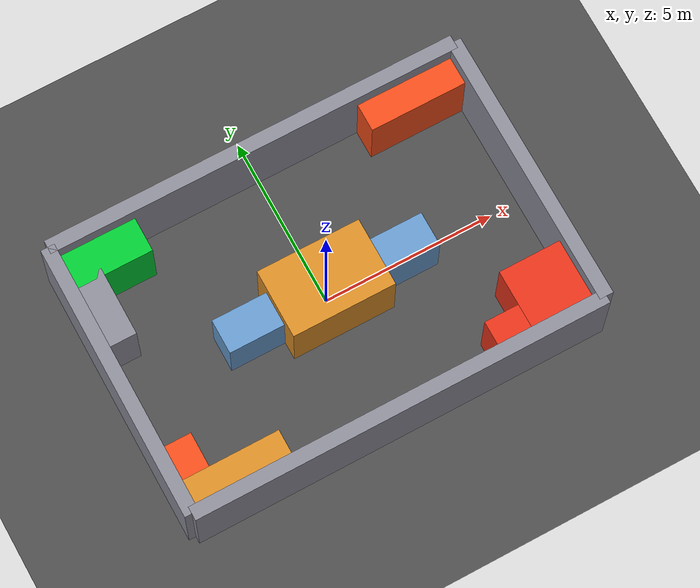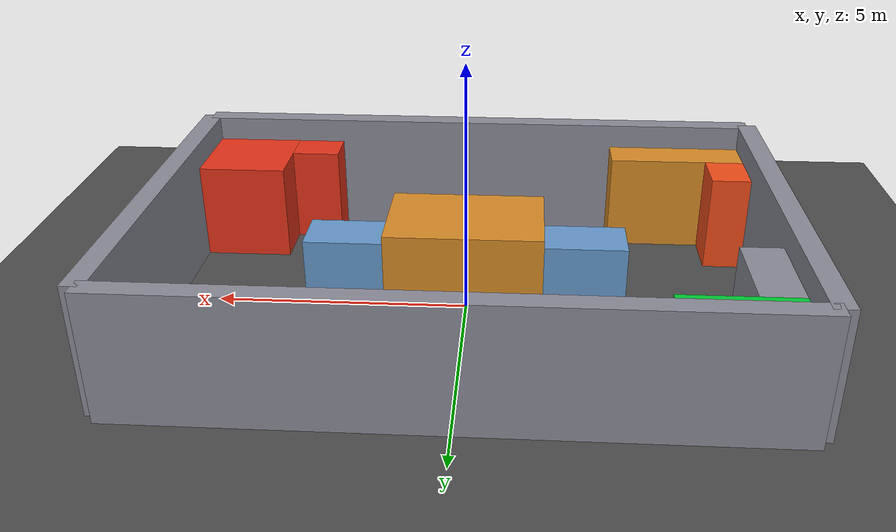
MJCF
<mujoco model="ranger_test_env">

  <compiler angle="radian"/>
  <option timestep="0.004" integrator="RK4" gravity="0 0 -9.81"/>

  <default>
    <joint damping="1.0" armature="0.01"/>
    <geom friction="1.2 0.01 0.001" condim="4" solimp="0.9 0.95 0.001" solref="0.02 1"/>
  </default>

  <!-- Include the base robot model -->
  <include file="C:\Users\sanmi\Desktop\projects\RL\simulation\ranger_mini_v3\ranger_mini_v3.xml"/>

  <asset>
    <!-- Start / Finish lines -->
    <material name="start_mat"  rgba="0.0 0.8 0.2 1"/>
    <material name="finish_mat" rgba="0.9 0.2 0.1 1"/>
    <material name="wall_mat"   rgba="0.55 0.55 0.60 1"/>
    <material name="box_mat"    rgba="0.85 0.55 0.15 1"/>
    <material name="cone_mat"   rgba="0.95 0.3  0.1  1"/>
    <material name="ramp_mat"   rgba="0.4  0.6  0.8  1"/>
  </asset>

  <worldbody>

    <!-- ── Lighting ────────────────────────────────────────────────────── -->
    <!-- Different lighting: Warm and cool lights in the scene -->
    <light name="warm_fill" pos="-4 -2 4" dir="1 0.5 -1" diffuse="0.8 0.5 0.3" castshadow="false"/>
    <light name="cool_fill" pos="4 2 4" dir="-1 -0.5 -1" diffuse="0.3 0.5 0.8" castshadow="false"/>
    <light name="green_fill" pos="0 3 4" dir="0 -1 -1" diffuse="0.2 0.6 0.3" castshadow="false"/>

    <!-- ── Perimeter walls (12x8 meters) ───────────────────────────────── -->
    <geom name="wall_n" type="box" size="6 0.2 1.25" pos="0  4 1.25" material="wall_mat" contype="1" conaffinity="1"/>
    <geom name="wall_s" type="box" size="6 0.2 1.25" pos="0 -4 1.25" material="wall_mat" contype="1" conaffinity="1"/>
    <geom name="wall_e" type="box" size="0.2 4 1.25" pos=" 6 0 1.25" material="wall_mat" contype="1" conaffinity="1"/>
    <geom name="wall_w" type="box" size="0.2 4 1.25" pos="-6 0 1.25" material="wall_mat" contype="1" conaffinity="1"/>

    <!-- ── Obstacles matching the map layout ───────────────────────────── -->
    <!-- Central block -->
    <geom name="obs_center" type="box" size="1.5 1.0 1.0" pos="0 0 1.0" material="box_mat"/>
    <geom name="obs_center_l" type="box" size="0.8 0.5 0.8" pos="-2.3 0 0.8" material="ramp_mat"/>
    <geom name="obs_center_r" type="box" size="0.8 0.5 0.8" pos="2.3 0 0.8" material="ramp_mat"/>

    <!-- Top-left structure -->
    <geom name="obs_tl1" type="box" size="1.2 0.6 1.0" pos="-4.8 3.4 1.0" material="start_mat"/>
    <geom name="obs_tl2" type="box" size="0.5 1.0 1.0" pos="-5.5 2.0 1.0" material="wall_mat"/>

    <!-- Bottom-right structure -->
    <geom name="obs_br1" type="box" size="1.0 1.0 1.0" pos="5.0 -3.0 1.0" material="finish_mat"/>
    <geom name="obs_br2" type="box" size="0.5 0.5 1.0" pos="3.5 -3.5 1.0" material="finish_mat"/>

    <!-- Top-right structure -->
    <geom name="obs_tr1" type="box" size="1.5 0.5 1.0" pos="4.5 3.5 1.0" material="cone_mat"/>

    <!-- Bottom-left structure -->
    <geom name="obs_bl1" type="box" size="1.5 0.5 1.0" pos="-4.5 -3.5 1.0" material="box_mat"/>
    <geom name="obs_bl2" type="box" size="0.5 0.5 1.0" pos="-5.5 -2.5 1.0" material="cone_mat"/>

  </worldbody>
</mujoco>

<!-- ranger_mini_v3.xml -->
<mujoco model="ranger_mini_v3">

  <compiler angle="radian"/>

  <!-- Physics: small timestep for wheel-ground stability -->
  <option timestep="0.004" integrator="RK4" gravity="0 0 -9.81"/>

  <default>
    <joint damping="1.0" armature="0.01"/>
    <!-- Good tire-like friction with proper contact parameters -->
    <geom friction="1.2 0.005 0.0001" condim="4" solimp="0.95 0.99 0.001" solref="0.01 1"/>
  </default>

  <asset>
    <texture name="floor_tex" type="2d" builtin="checker"
             rgb1="0.25 0.25 0.25" rgb2="0.35 0.35 0.35" width="512" height="512"/>
    <material name="floor_mat"    texture="floor_tex" texrepeat="10 10"/>

    <material name="chassis_mat"  rgba="0.79 0.82 0.93 1"/>
    <material name="wheel_mat"    rgba="0.12 0.12 0.12 1"/>
    <material name="steering_mat" rgba="0.30 0.30 0.35 1"/>
    <material name="cam_mat"      rgba="0.9 0.2 0.1 1"/>
  </asset>

  <worldbody>
    <!-- Ground plane -->
    <geom name="floor" type="plane" size="30 30 0.1"
          material="floor_mat" friction="1.2 0.005 0.0001" contype="1" conaffinity="3"/>

    <!-- Lighting -->
    <light name="sun" pos="0 0 8" dir="0 0 -1" diffuse="0.85 0.85 0.85" specular="0.2 0.2 0.2" castshadow="true"/>
    <light name="fill" pos="-3 3 4" dir="0.4 -0.5 -0.8" diffuse="0.3 0.3 0.3" specular="0.0 0.0 0.0" castshadow="false"/>

    <!-- ======================= RANGER MINI V3 ======================= -->
    <body name="base_link" pos="0 0 0.2775">

      <!-- 6-DOF free joint so the robot moves in the world -->
      <freejoint name="root"/>

      <!-- Chassis inertia (Spec: 75 kg, 720x500x345 mm box) -->
      <inertial pos="-0.02 -0.003 0.05" mass="43"
                diaginertia="1.3 1.3 1.3"/>

      <!-- Chassis collision box (Spec: 720x500x345 mm, half-sizes 0.36x0.25x0.1725) -->
      <geom name="chassis_box" type="box" size="0.36 0.25 0.1725"
            pos="0 0 0" material="chassis_mat" contype="1" conaffinity="1"/>

      <!-- IMU site (at base centre) -->
      <site name="imu_site" pos="0 0 0" size="0.01"/>

      <!-- ── Front RGB Camera ───────────────────────────────────────────── -->
      <body name="camera_link" pos="0.36 0 0.10">
        <geom name="cam_marker" type="box" size="0.015 0.02 0.015" material="cam_mat" contype="0" conaffinity="0"/>
        <camera name="front_cam" fovy="80" xyaxes="0 -1 0 0 0 1"/>
      </body>

      <!-- ── LiDAR mount (simulated as depth camera) ───────────────────── -->
      <body name="lidar_link" pos="0.36 0 0.20">
        <geom name="lidar_marker" type="cylinder" size="0.03 0.02" material="cam_mat" contype="0" conaffinity="0"/>
        <!-- Narrow vertical FOV to avoid seeing floor, wide aspect ratio for horizontal sweep -->
        <camera name="lidar_cam" fovy="15" xyaxes="0 -1 0 0 0 1"/>
      </body>

      <!-- ═══════════ FRONT-LEFT CORNER ═════════════════════════════════
           Steering mount: x=+0.2105  y=+0.300  z=-0.1125
      -->
      <body name="fl_suspension_link" pos="0.247 0.182 0.0">
        <inertial pos="0 0 0" mass="2" diaginertia="0.01 0.01 0.01"/>
        <joint name="fl_suspension_joint" type="slide" axis="0 0 1" stiffness="10500" damping="500"/>
        <body name="fl_steering_wheel_link" pos="0 0 -0.1775">
          <joint name="fl_steering_joint" type="hinge" axis="0 0 -1"
                 limited="false"
                 damping="5.0" armature="1.0"/>
          <inertial pos="0 0 -0.04" mass="1"
                    diaginertia="0.01 0.01 0.01"/>
          <geom name="fl_knuckle" type="cylinder" size="0.025 0.06"
                pos="0 0 -0.06" material="steering_mat"
                contype="0" conaffinity="0"/>

          <!-- Wheel: steering pivot passes through wheel center for 0 scrub radius -->
          <body name="fl_wheel_link" pos="0 0 0">
            <joint name="fl_wheel" type="hinge" axis="0 1 0"
                   limited="false" damping="0.5"/>
            <inertial pos="0 0 0" mass="5"
                      diaginertia="0.04 0.07 0.04"/>
            <!-- Spec: radius 0.165, half-width 0.05 -->
            <geom name="fl_wheel_col" type="cylinder" size="0.100 0.05"
                  euler="1.5708 0 0" material="wheel_mat"
                  contype="2" conaffinity="2"/>
          </body>
        </body>
      </body>

      <!-- ═══════════ FRONT-RIGHT CORNER ════════════════════════════════
           Steering mount: x=+0.2105  y=-0.300  z=-0.1125
      -->
      <body name="fr_suspension_link" pos="0.247 -0.182 0.0">
        <inertial pos="0 0 0" mass="2" diaginertia="0.01 0.01 0.01"/>
        <joint name="fr_suspension_joint" type="slide" axis="0 0 1" stiffness="10500" damping="500"/>
        <body name="fr_steering_wheel_link" pos="0 0 -0.1775">
          <joint name="fr_steering_joint" type="hinge" axis="0 0 -1"
                 limited="false"
                 damping="5.0" armature="1.0"/>
          <inertial pos="0 0 -0.04" mass="1"
                    diaginertia="0.01 0.01 0.01"/>
          <geom name="fr_knuckle" type="cylinder" size="0.025 0.06"
                pos="0 0 -0.06" material="steering_mat"
                contype="0" conaffinity="0"/>

          <body name="fr_wheel_link" pos="0 0 0">
            <joint name="fr_wheel" type="hinge" axis="0 1 0"
                   limited="false" damping="0.5"/>
            <inertial pos="0 0 0" mass="5"
                      diaginertia="0.04 0.07 0.04"/>
            <geom name="fr_wheel_col" type="cylinder" size="0.100 0.05"
                  euler="1.5708 0 0" material="wheel_mat"
                  contype="2" conaffinity="2"/>
          </body>
        </body>
      </body>

      <!-- ═══════════ REAR-LEFT CORNER ══════════════════════════════════
           Steering mount: x=-0.2105  y=+0.300  z=-0.1125
      -->
      <body name="rl_suspension_link" pos="-0.247 0.182 0.0">
        <inertial pos="0 0 0" mass="2" diaginertia="0.01 0.01 0.01"/>
        <joint name="rl_suspension_joint" type="slide" axis="0 0 1" stiffness="10500" damping="500"/>
        <body name="rl_steering_wheel_link" pos="0 0 -0.1775">
          <joint name="rl_steering_joint" type="hinge" axis="0 0 -1"
                 limited="false"
                 damping="5.0" armature="1.0"/>
          <inertial pos="0 0 -0.04" mass="1"
                    diaginertia="0.01 0.01 0.01"/>
          <geom name="rl_knuckle" type="cylinder" size="0.025 0.06"
                pos="0 0 -0.06" material="steering_mat"
                contype="0" conaffinity="0"/>

          <body name="rl_wheel_link" pos="0 0 0">
            <joint name="rl_wheel" type="hinge" axis="0 1 0"
                   limited="false" damping="0.5"/>
            <inertial pos="0 0 0" mass="5"
                      diaginertia="0.04 0.07 0.04"/>
            <geom name="rl_wheel_col" type="cylinder" size="0.100 0.05"
                  euler="1.5708 0 0" material="wheel_mat"
                  contype="2" conaffinity="2"/>
          </body>
        </body>
      </body>

      <!-- ═══════════ REAR-RIGHT CORNER ═════════════════════════════════
           Steering mount: x=-0.2105  y=-0.300  z=-0.1125
      -->
      <body name="rr_suspension_link" pos="-0.247 -0.182 0.0">
        <inertial pos="0 0 0" mass="2" diaginertia="0.01 0.01 0.01"/>
        <joint name="rr_suspension_joint" type="slide" axis="0 0 1" stiffness="10500" damping="500"/>
        <body name="rr_steering_wheel_link" pos="0 0 -0.1775">
          <joint name="rr_steering_joint" type="hinge" axis="0 0 -1"
                 limited="false"
                 damping="5.0" armature="1.0"/>
          <inertial pos="0 0 -0.04" mass="1"
                    diaginertia="0.01 0.01 0.01"/>
          <geom name="rr_knuckle" type="cylinder" size="0.025 0.06"
                pos="0 0 -0.06" material="steering_mat"
                contype="0" conaffinity="0"/>

          <body name="rr_wheel_link" pos="0 0 0">
            <joint name="rr_wheel" type="hinge" axis="0 1 0"
                   limited="false" damping="0.5"/>
            <inertial pos="0 0 0" mass="5"
                      diaginertia="0.04 0.07 0.04"/>
            <geom name="rr_wheel_col" type="cylinder" size="0.100 0.05"
                  euler="1.5708 0 0" material="wheel_mat"
                  contype="2" conaffinity="2"/>
          </body>
        </body>
      </body>

    </body> <!-- /base_link -->

  </worldbody>

  <actuator>
    <!-- Steering position actuators (100W harmonic drives) -->
    <position name="act_fl_steer" joint="fl_steering_joint" kp="50" forcerange="-20 20" ctrlrange="-3.14159 3.14159"/>
    <position name="act_fr_steer" joint="fr_steering_joint" kp="50" forcerange="-20 20" ctrlrange="-3.14159 3.14159"/>
    <position name="act_rl_steer" joint="rl_steering_joint" kp="50" forcerange="-20 20" ctrlrange="-3.14159 3.14159"/>
    <position name="act_rr_steer" joint="rr_steering_joint" kp="50" forcerange="-20 20" ctrlrange="-3.14159 3.14159"/>

    <!-- Drive velocity actuators (350W brushless motors) -->
    <velocity name="act_fl_drive" joint="fl_wheel" kv="50" forcerange="-20 20" ctrlrange="-20 20"/>
    <velocity name="act_fr_drive" joint="fr_wheel" kv="50" forcerange="-20 20" ctrlrange="-20 20"/>
    <velocity name="act_rl_drive" joint="rl_wheel" kv="50" forcerange="-20 20" ctrlrange="-20 20"/>
    <velocity name="act_rr_drive" joint="rr_wheel" kv="50" forcerange="-20 20" ctrlrange="-20 20"/>
  </actuator>

  <!-- ═══════════════════════════════════════════════════════════════════════
       SENSORS
  ═══════════════════════════════════════════════════════════════════════════ -->
  <sensor>
    <accelerometer name="imu_accel" site="imu_site"/>
    <gyro name="imu_gyro" site="imu_site"/>
    <jointvel name="fl_wheel_vel" joint="fl_wheel"/>
    <jointvel name="fr_wheel_vel" joint="fr_wheel"/>
    <jointvel name="rl_wheel_vel" joint="rl_wheel"/>
    <jointvel name="rr_wheel_vel" joint="rr_wheel"/>
    <jointpos name="fl_steer_pos" joint="fl_steering_joint"/>
    <jointpos name="fr_steer_pos" joint="fr_steering_joint"/>
    <jointpos name="rl_steer_pos" joint="rl_steering_joint"/>
    <jointpos name="rr_steer_pos" joint="rr_steering_joint"/>
  </sensor>

</mujoco>
